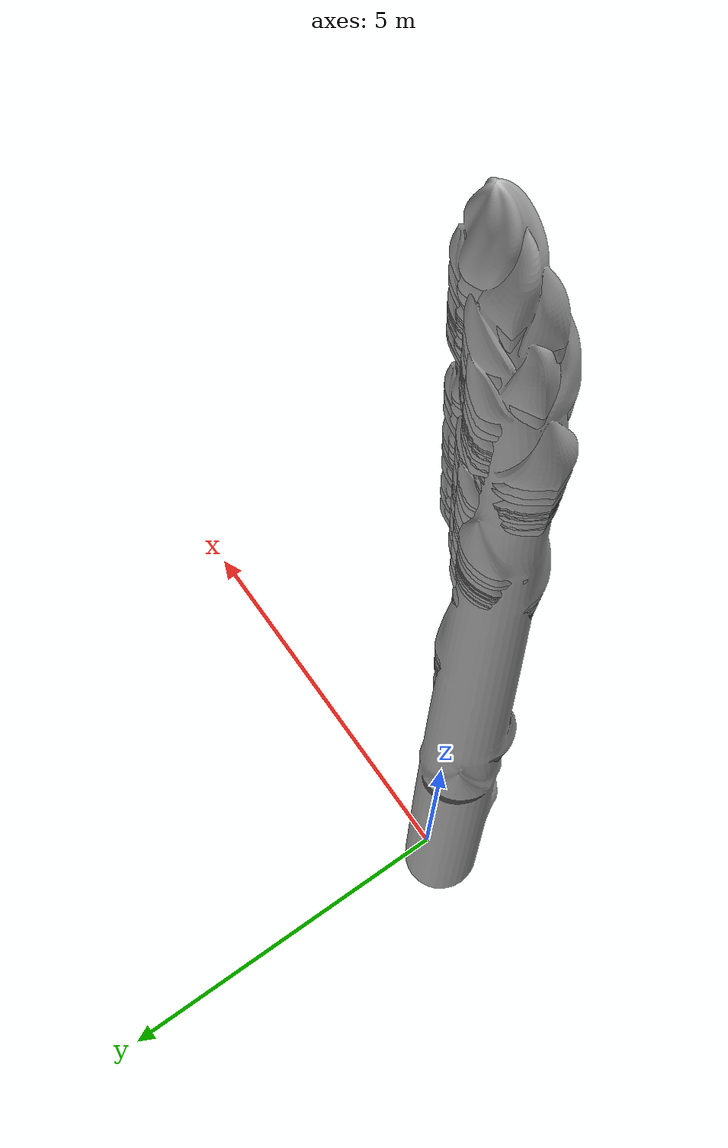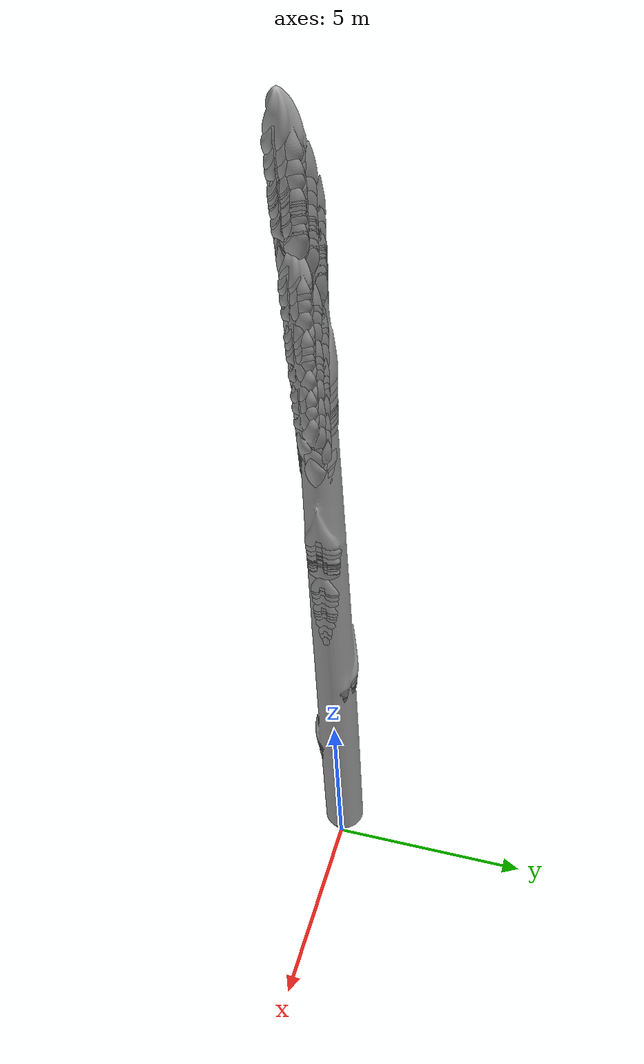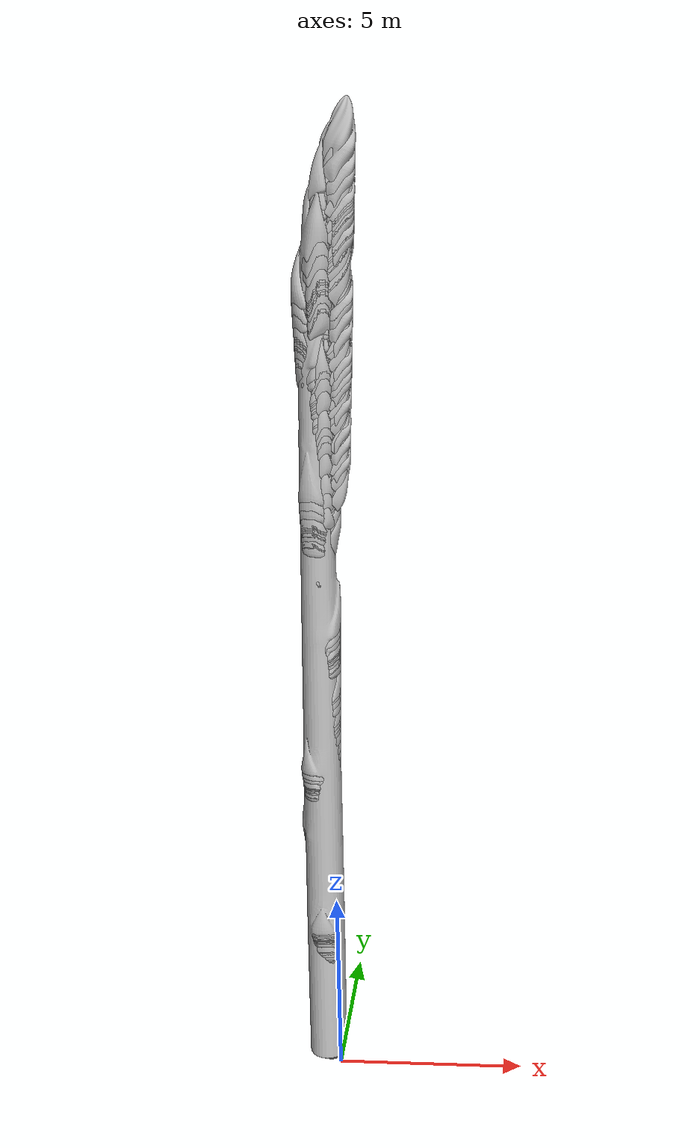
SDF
<sdf version="1.6">
 <world name="default">
  <model name="asparagus_0">
   <static>1</static>
   <link name="asparagus_0">
    <visual name="visual">
     <geometry>
      <mesh>
       <uri>home/adeeb/asparagus_ws/src/models/Asparagus/meshes/asparagus.obj</uri>
       <scale>1.16266 1.16266 1.16266</scale>
      </mesh>
     </geometry>
    </visual>
    <collision name="collision">
     <geometry>
      <mesh>
       <uri>home/adeeb/asparagus_ws/src/models/Asparagus/meshes/asparagus.obj</uri>
       <scale>1.16266 1.16266 1.16266</scale>
      </mesh>
     </geometry>
    </collision>
   </link>
  </model>
  <model name="asparagus_1">
   <static>1</static>
   <link name="asparagus_1">
    <visual name="visual">
     <geometry>
      <mesh>
       <uri>home/adeeb/asparagus_ws/src/models/Asparagus/meshes/asparagus.obj</uri>
       <scale>1.01821 1.01821 1.01821</scale>
      </mesh>
     </geometry>
    </visual>
    <collision name="collision">
     <geometry>
      <mesh>
       <uri>home/adeeb/asparagus_ws/src/models/Asparagus/meshes/asparagus.obj</uri>
       <scale>1.01821 1.01821 1.01821</scale>
      </mesh>
     </geometry>
    </collision>
   </link>
  </model>
  <model name="asparagus_2">
   <static>1</static>
   <link name="asparagus_2">
    <visual name="visual">
     <geometry>
      <mesh>
       <uri>home/adeeb/asparagus_ws/src/models/Asparagus/meshes/asparagus.obj</uri>
       <scale>1.0212 1.0212 1.0212</scale>
      </mesh>
     </geometry>
    </visual>
    <collision name="collision">
     <geometry>
      <mesh>
       <uri>home/adeeb/asparagus_ws/src/models/Asparagus/meshes/asparagus.obj</uri>
       <scale>1.0212 1.0212 1.0212</scale>
      </mesh>
     </geometry>
    </collision>
   </link>
  </model>
  <model name="asparagus_3">
   <static>1</static>
   <link name="asparagus_3">
    <visual name="visual">
     <geometry>
      <mesh>
       <uri>home/adeeb/asparagus_ws/src/models/Asparagus/meshes/asparagus.obj</uri>
       <scale>0.945525 0.945525 0.945525</scale>
      </mesh>
     </geometry>
    </visual>
    <collision name="collision">
     <geometry>
      <mesh>
       <uri>home/adeeb/asparagus_ws/src/models/Asparagus/meshes/asparagus.obj</uri>
       <scale>0.945525 0.945525 0.945525</scale>
      </mesh>
     </geometry>
    </collision>
   </link>
  </model>
  <model name="asparagus_4">
   <static>1</static>
   <link name="asparagus_4">
    <visual name="visual">
     <geometry>
      <mesh>
       <uri>home/adeeb/asparagus_ws/src/models/Asparagus/meshes/asparagus.obj</uri>
       <scale>1.15308 1.15308 1.15308</scale>
      </mesh>
     </geometry>
    </visual>
    <collision name="collision">
     <geometry>
      <mesh>
       <uri>home/adeeb/asparagus_ws/src/models/Asparagus/meshes/asparagus.obj</uri>
       <scale>1.15308 1.15308 1.15308</scale>
      </mesh>
     </geometry>
    </collision>
   </link>
  </model>
  <model name="asparagus_5">
   <static>1</static>
   <link name="asparagus_5">
    <visual name="visual">
     <geometry>
      <mesh>
       <uri>home/adeeb/asparagus_ws/src/models/Asparagus/meshes/asparagus.obj</uri>
       <scale>0.874626 0.874626 0.874626</scale>
      </mesh>
     </geometry>
    </visual>
    <collision name="collision">
     <geometry>
      <mesh>
       <uri>home/adeeb/asparagus_ws/src/models/Asparagus/meshes/asparagus.obj</uri>
       <scale>0.874626 0.874626 0.874626</scale>
      </mesh>
     </geometry>
    </collision>
   </link>
  </model>
  <model name="asparagus_6">
   <static>1</static>
   <link name="asparagus_6">
    <visual name="visual">
     <geometry>
      <mesh>
       <uri>home/adeeb/asparagus_ws/src/models/Asparagus/meshes/asparagus.obj</uri>
       <scale>1.12418 1.12418 1.12418</scale>
      </mesh>
     </geometry>
    </visual>
    <collision name="collision">
     <geometry>
      <mesh>
       <uri>home/adeeb/asparagus_ws/src/models/Asparagus/meshes/asparagus.obj</uri>
       <scale>1.12418 1.12418 1.12418</scale>
      </mesh>
     </geometry>
    </collision>
   </link>
  </model>
  <model name="asparagus_7">
   <static>1</static>
   <link name="asparagus_7">
    <visual name="visual">
     <geometry>
      <mesh>
       <uri>home/adeeb/asparagus_ws/src/models/Asparagus/meshes/asparagus.obj</uri>
       <scale>0.986592 0.986592 0.986592</scale>
      </mesh>
     </geometry>
    </visual>
    <collision name="collision">
     <geometry>
      <mesh>
       <uri>home/adeeb/asparagus_ws/src/models/Asparagus/meshes/asparagus.obj</uri>
       <scale>0.986592 0.986592 0.986592</scale>
      </mesh>
     </geometry>
    </collision>
   </link>
  </model>
  <model name="asparagus_8">
   <static>1</static>
   <link name="asparagus_8">
    <visual name="visual">
     <geometry>
      <mesh>
       <uri>home/adeeb/asparagus_ws/src/models/Asparagus/meshes/asparagus.obj</uri>
       <scale>0.83609 0.83609 0.83609</scale>
      </mesh>
     </geometry>
    </visual>
    <collision name="collision">
     <geometry>
      <mesh>
       <uri>home/adeeb/asparagus_ws/src/models/Asparagus/meshes/asparagus.obj</uri>
       <scale>0.83609 0.83609 0.83609</scale>
      </mesh>
     </geometry>
    </collision>
   </link>
  </model>
  <model name="asparagus_9">
   <static>1</static>
   <link name="asparagus_9">
    <visual name="visual">
     <geometry>
      <mesh>
       <uri>home/adeeb/asparagus_ws/src/models/Asparagus/meshes/asparagus.obj</uri>
       <scale>1.00434 1.00434 1.00434</scale>
      </mesh>
     </geometry>
    </visual>
    <collision name="collision">
     <geometry>
      <mesh>
       <uri>home/adeeb/asparagus_ws/src/models/Asparagus/meshes/asparagus.obj</uri>
       <scale>1.00434 1.00434 1.00434</scale>
      </mesh>
     </geometry>
    </collision>
   </link>
  </model>
  <model name="asparagus_10">
   <static>1</static>
   <link name="asparagus_10">
    <visual name="visual">
     <geometry>
      <mesh>
       <uri>home/adeeb/asparagus_ws/src/models/Asparagus/meshes/asparagus.obj</uri>
       <scale>1.08822 1.08822 1.08822</scale>
      </mesh>
     </geometry>
    </visual>
    <collision name="collision">
     <geometry>
      <mesh>
       <uri>home/adeeb/asparagus_ws/src/models/Asparagus/meshes/asparagus.obj</uri>
       <scale>1.08822 1.08822 1.08822</scale>
      </mesh>
     </geometry>
    </collision>
   </link>
  </model>
  <model name="asparagus_11">
   <static>1</static>
   <link name="asparagus_11">
    <visual name="visual">
     <geometry>
      <mesh>
       <uri>home/adeeb/asparagus_ws/src/models/Asparagus/meshes/asparagus.obj</uri>
       <scale>1.11381 1.11381 1.11381</scale>
      </mesh>
     </geometry>
    </visual>
    <collision name="collision">
     <geometry>
      <mesh>
       <uri>home/adeeb/asparagus_ws/src/models/Asparagus/meshes/asparagus.obj</uri>
       <scale>1.11381 1.11381 1.11381</scale>
      </mesh>
     </geometry>
    </collision>
   </link>
  </model>
  <model name="asparagus_12">
   <static>1</static>
   <link name="asparagus_12">
    <visual name="visual">
     <geometry>
      <mesh>
       <uri>home/adeeb/asparagus_ws/src/models/Asparagus/meshes/asparagus.obj</uri>
       <scale>1.18339 1.18339 1.18339</scale>
      </mesh>
     </geometry>
    </visual>
    <collision name="collision">
     <geometry>
      <mesh>
       <uri>home/adeeb/asparagus_ws/src/models/Asparagus/meshes/asparagus.obj</uri>
       <scale>1.18339 1.18339 1.18339</scale>
      </mesh>
     </geometry>
    </collision>
   </link>
  </model>
  <model name="asparagus_13">
   <static>1</static>
   <link name="asparagus_13">
    <visual name="visual">
     <geometry>
      <mesh>
       <uri>home/adeeb/asparagus_ws/src/models/Asparagus/meshes/asparagus.obj</uri>
       <scale>1.12188 1.12188 1.12188</scale>
      </mesh>
     </geometry>
    </visual>
    <collision name="collision">
     <geometry>
      <mesh>
       <uri>home/adeeb/asparagus_ws/src/models/Asparagus/meshes/asparagus.obj</uri>
       <scale>1.12188 1.12188 1.12188</scale>
      </mesh>
     </geometry>
    </collision>
   </link>
  </model>
  <model name="asparagus_14">
   <static>1</static>
   <link name="asparagus_14">
    <visual name="visual">
     <geometry>
      <mesh>
       <uri>home/adeeb/asparagus_ws/src/models/Asparagus/meshes/asparagus.obj</uri>
       <scale>1.11393 1.11393 1.11393</scale>
      </mesh>
     </geometry>
    </visual>
    <collision name="collision">
     <geometry>
      <mesh>
       <uri>home/adeeb/asparagus_ws/src/models/Asparagus/meshes/asparagus.obj</uri>
       <scale>1.11393 1.11393 1.11393</scale>
      </mesh>
     </geometry>
    </collision>
   </link>
  </model>
  <model name="asparagus_15">
   <static>1</static>
   <link name="asparagus_15">
    <visual name="visual">
     <geometry>
      <mesh>
       <uri>home/adeeb/asparagus_ws/src/models/Asparagus/meshes/asparagus.obj</uri>
       <scale>1.09372 1.09372 1.09372</scale>
      </mesh>
     </geometry>
    </visual>
    <collision name="collision">
     <geometry>
      <mesh>
       <uri>home/adeeb/asparagus_ws/src/models/Asparagus/meshes/asparagus.obj</uri>
       <scale>1.09372 1.09372 1.09372</scale>
      </mesh>
     </geometry>
    </collision>
   </link>
  </model>
  <model name="asparagus_16">
   <static>1</static>
   <link name="asparagus_16">
    <visual name="visual">
     <geometry>
      <mesh>
       <uri>home/adeeb/asparagus_ws/src/models/Asparagus/meshes/asparagus.obj</uri>
       <scale>0.9289 0.9289 0.9289</scale>
      </mesh>
     </geometry>
    </visual>
    <collision name="collision">
     <geometry>
      <mesh>
       <uri>home/adeeb/asparagus_ws/src/models/Asparagus/meshes/asparagus.obj</uri>
       <scale>0.9289 0.9289 0.9289</scale>
      </mesh>
     </geometry>
    </collision>
   </link>
  </model>
  <model name="asparagus_17">
   <static>1</static>
   <link name="asparagus_17">
    <visual name="visual">
     <geometry>
      <mesh>
       <uri>home/adeeb/asparagus_ws/src/models/Asparagus/meshes/asparagus.obj</uri>
       <scale>0.955108 0.955108 0.955108</scale>
      </mesh>
     </geometry>
    </visual>
    <collision name="collision">
     <geometry>
      <mesh>
       <uri>home/adeeb/asparagus_ws/src/models/Asparagus/meshes/asparagus.obj</uri>
       <scale>0.955108 0.955108 0.955108</scale>
      </mesh>
     </geometry>
    </collision>
   </link>
  </model>
  <model name="asparagus_18">
   <static>1</static>
   <link name="asparagus_18">
    <visual name="visual">
     <geometry>
      <mesh>
       <uri>home/adeeb/asparagus_ws/src/models/Asparagus/meshes/asparagus.obj</uri>
       <scale>0.857995 0.857995 0.857995</scale>
      </mesh>
     </geometry>
    </visual>
    <collision name="collision">
     <geometry>
      <mesh>
       <uri>home/adeeb/asparagus_ws/src/models/Asparagus/meshes/asparagus.obj</uri>
       <scale>0.857995 0.857995 0.857995</scale>
      </mesh>
     </geometry>
    </collision>
   </link>
  </model>
  <model name="asparagus_19">
   <static>1</static>
   <link name="asparagus_19">
    <visual name="visual">
     <geometry>
      <mesh>
       <uri>home/adeeb/asparagus_ws/src/models/Asparagus/meshes/asparagus.obj</uri>
       <scale>0.93462 0.93462 0.93462</scale>
      </mesh>
     </geometry>
    </visual>
    <collision name="collision">
     <geometry>
      <mesh>
       <uri>home/adeeb/asparagus_ws/src/models/Asparagus/meshes/asparagus.obj</uri>
       <scale>0.93462 0.93462 0.93462</scale>
      </mesh>
     </geometry>
    </collision>
   </link>
  </model>
  <model name="asparagus_20">
   <static>1</static>
   <link name="asparagus_20">
    <visual name="visual">
     <geometry>
      <mesh>
       <uri>home/adeeb/asparagus_ws/src/models/Asparagus/meshes/asparagus.obj</uri>
       <scale>1.11009 1.11009 1.11009</scale>
      </mesh>
     </geometry>
    </visual>
    <collision name="collision">
     <geometry>
      <mesh>
       <uri>home/adeeb/asparagus_ws/src/models/Asparagus/meshes/asparagus.obj</uri>
       <scale>1.11009 1.11009 1.11009</scale>
      </mesh>
     </geometry>
    </collision>
   </link>
  </model>
  <model name="asparagus_21">
   <static>1</static>
   <link name="asparagus_21">
    <visual name="visual">
     <geometry>
      <mesh>
       <uri>home/adeeb/asparagus_ws/src/models/Asparagus/meshes/asparagus.obj</uri>
       <scale>1.09417 1.09417 1.09417</scale>
      </mesh>
     </geometry>
    </visual>
    <collision name="collision">
     <geometry>
      <mesh>
       <uri>home/adeeb/asparagus_ws/src/models/Asparagus/meshes/asparagus.obj</uri>
       <scale>1.09417 1.09417 1.09417</scale>
      </mesh>
     </geometry>
    </collision>
   </link>
  </model>
  <model name="asparagus_22">
   <static>1</static>
   <link name="asparagus_22">
    <visual name="visual">
     <geometry>
      <mesh>
       <uri>home/adeeb/asparagus_ws/src/models/Asparagus/meshes/asparagus.obj</uri>
       <scale>1.13021 1.13021 1.13021</scale>
      </mesh>
     </geometry>
    </visual>
    <collision name="collision">
     <geometry>
      <mesh>
       <uri>home/adeeb/asparagus_ws/src/models/Asparagus/meshes/asparagus.obj</uri>
       <scale>1.13021 1.13021 1.13021</scale>
      </mesh>
     </geometry>
    </collision>
   </link>
  </model>
  <model name="asparagus_23">
   <static>1</static>
   <link name="asparagus_23">
    <visual name="visual">
     <geometry>
      <mesh>
       <uri>home/adeeb/asparagus_ws/src/models/Asparagus/meshes/asparagus.obj</uri>
       <scale>1.12725 1.12725 1.12725</scale>
      </mesh>
     </geometry>
    </visual>
    <collision name="collision">
     <geometry>
      <mesh>
       <uri>home/adeeb/asparagus_ws/src/models/Asparagus/meshes/asparagus.obj</uri>
       <scale>1.12725 1.12725 1.12725</scale>
      </mesh>
     </geometry>
    </collision>
   </link>
  </model>
  <model name="asparagus_24">
   <static>1</static>
   <link name="asparagus_24">
    <visual name="visual">
     <geometry>
      <mesh>
       <uri>home/adeeb/asparagus_ws/src/models/Asparagus/meshes/asparagus.obj</uri>
       <scale>0.904729 0.904729 0.904729</scale>
      </mesh>
     </geometry>
    </visual>
    <collision name="collision">
     <geometry>
      <mesh>
       <uri>home/adeeb/asparagus_ws/src/models/Asparagus/meshes/asparagus.obj</uri>
       <scale>0.904729 0.904729 0.904729</scale>
      </mesh>
     </geometry>
    </collision>
   </link>
  </model>
 </world>
</sdf>
